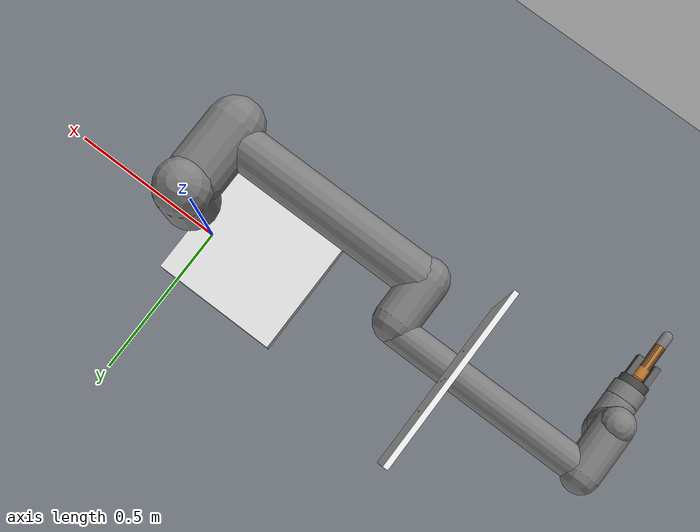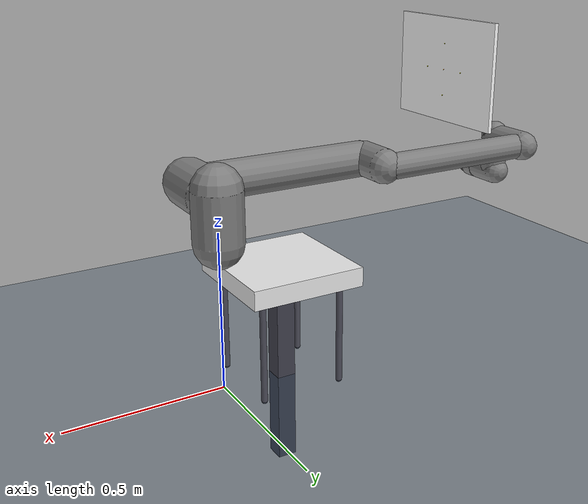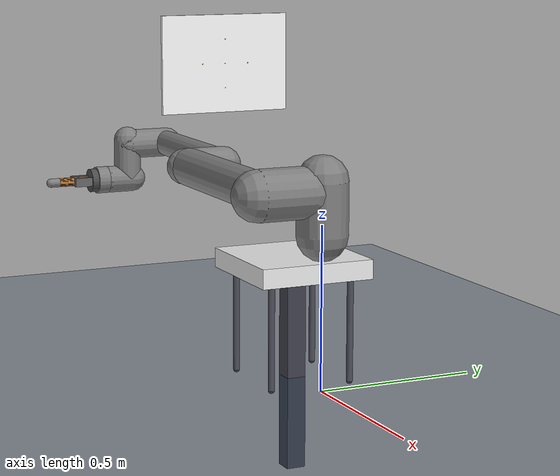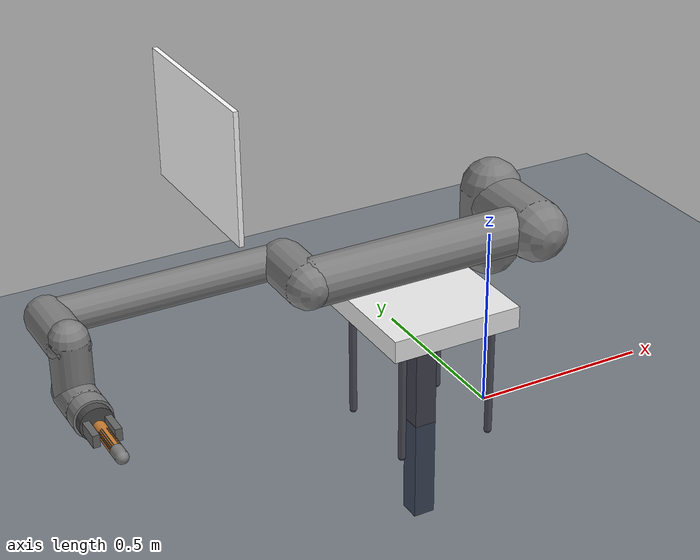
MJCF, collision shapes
<mujoco model="ur10e_multihole_fixed">
  <include file="universal_robots/ur10e.xml"/>

  <visual>
    <headlight diffuse="0.6 0.6 0.6" ambient="0.3 0.3 0.3" specular="0 0 0"/>
    <rgba haze="0.15 0.25 0.35 1"/>
    <global azimuth="120" elevation="-20"/>
  </visual>

  <asset>
    <texture type="skybox" builtin="gradient" rgb1="0.3 0.5 0.7" rgb2="0 0 0" width="512" height="3072"/>
    <texture type="2d" name="groundplane" builtin="checker" rgb1="0.2 0.3 0.4" rgb2="0.1 0.2 0.3"
             width="300" height="300" mark="edge" markrgb="0.8 0.8 0.8"/>
    <material name="groundplane" texture="groundplane" texuniform="true" texrepeat="5 5" reflectance="0.2"/>
  </asset>

  <worldbody>
    <light pos="0 0 1.5" dir="0 0 -1" directional="true"/>
    <geom name="floor" size="0 0 0.05" type="plane" material="groundplane"/>

    <body name="support_table" pos="-0.2 0 0">
      <geom type="box" size="0.18 0.18 0.03" pos="0 0 0.35" rgba="0.92 0.92 0.92 1"/>
      <geom type="box" size="0.03 0.03 0.32" pos="0 0 0.03" rgba="0.25 0.25 0.3 1"/>
      <geom type="capsule" fromto="-0.13 -0.13 0  -0.13 -0.13 0.32" size="0.01" rgba="0.3 0.3 0.35 1"/>
      <geom type="capsule" fromto="-0.13 0.13 0  -0.13 0.13 0.32" size="0.01" rgba="0.3 0.3 0.35 1"/>
      <geom type="capsule" fromto="0.13 -0.13 0  0.13 -0.13 0.32" size="0.01" rgba="0.3 0.3 0.35 1"/>
      <geom type="capsule" fromto="0.13 0.13 0  0.13 0.13 0.32" size="0.01" rgba="0.3 0.3 0.35 1"/>
    </body>

    <body name="panel" pos="-0.78 0.024 0.908">
      <geom name="panel_surface" type="box" size="0.006 0.22 0.16" pos="0 0 0" rgba="1 1 1 1" contype="1" conaffinity="1"/>

      <site name="hole_1_center" pos="0.0  0.00  0.00" size="0.006 0.006 0.0008" type="ellipsoid" rgba="1 1 1 1" zaxis="1 0 0"/>
      <site name="hole_2_center" pos="0.0  0.08  0.00" size="0.006 0.006 0.0008" type="ellipsoid" rgba="1 1 1 1" zaxis="1 0 0"/>
      <site name="hole_3_center" pos="0.0 -0.08  0.00" size="0.006 0.006 0.0008" type="ellipsoid" rgba="1 1 1 1" zaxis="1 0 0"/>
      <site name="hole_4_center" pos="0.0  0.00  0.08" size="0.006 0.006 0.0008" type="ellipsoid" rgba="1 1 1 1" zaxis="1 0 0"/>
      <site name="hole_5_center" pos="0.0  0.00 -0.08" size="0.006 0.006 0.0008" type="ellipsoid" rgba="1 1 1 1" zaxis="1 0 0"/>

      <site name="hole_1_axis" pos="0.008 0 0" size="0.0015" rgba="1 1 0 1"/>
      <site name="hole_2_axis" pos="0.008 0.08 0" size="0.0015" rgba="1 1 0 1"/>
      <site name="hole_3_axis" pos="0.008 -0.08 0" size="0.0015" rgba="1 1 0 1"/>
      <site name="hole_4_axis" pos="0.008 0 0.08" size="0.0015" rgba="1 1 0 1"/>
      <site name="hole_5_axis" pos="0.008 0 -0.08" size="0.0015" rgba="1 1 0 1"/>

      <body name="hole_1_frame" pos="0.003 0.00 0.00">
        <geom type="capsule" fromto="0 0 0  0.005 0 0" size="0.0006" rgba="1 0 0 1" contype="0" conaffinity="0"/>
        <geom type="capsule" fromto="0 0 0  0 0.005 0" size="0.0006" rgba="0 1 0 1" contype="0" conaffinity="0"/>
        <geom type="capsule" fromto="0 0 0  0 0 0.005" size="0.0006" rgba="0 0 1 1" contype="0" conaffinity="0"/>
      </body>
      <body name="hole_2_frame" pos="0.003 0.08 0.00">
        <geom type="capsule" fromto="0 0 0  0.005 0 0" size="0.0006" rgba="1 0 0 1" contype="0" conaffinity="0"/>
        <geom type="capsule" fromto="0 0 0  0 0.005 0" size="0.0006" rgba="0 1 0 1" contype="0" conaffinity="0"/>
        <geom type="capsule" fromto="0 0 0  0 0 0.005" size="0.0006" rgba="0 0 1 1" contype="0" conaffinity="0"/>
      </body>
      <body name="hole_3_frame" pos="0.003 -0.08 0.00">
        <geom type="capsule" fromto="0 0 0  0.005 0 0" size="0.0006" rgba="1 0 0 1" contype="0" conaffinity="0"/>
        <geom type="capsule" fromto="0 0 0  0 0.005 0" size="0.0006" rgba="0 1 0 1" contype="0" conaffinity="0"/>
        <geom type="capsule" fromto="0 0 0  0 0 0.005" size="0.0006" rgba="0 0 1 1" contype="0" conaffinity="0"/>
      </body>
      <body name="hole_4_frame" pos="0.003 0.00 0.08">
        <geom type="capsule" fromto="0 0 0  0.005 0 0" size="0.0006" rgba="1 0 0 1" contype="0" conaffinity="0"/>
        <geom type="capsule" fromto="0 0 0  0 0.005 0" size="0.0006" rgba="0 1 0 1" contype="0" conaffinity="0"/>
        <geom type="capsule" fromto="0 0 0  0 0 0.005" size="0.0006" rgba="0 0 1 1" contype="0" conaffinity="0"/>
      </body>
      <body name="hole_5_frame" pos="0.003 0.00 -0.08">
        <geom type="capsule" fromto="0 0 0  0.005 0 0" size="0.0006" rgba="1 0 0 1" contype="0" conaffinity="0"/>
        <geom type="capsule" fromto="0 0 0  0 0.005 0" size="0.0006" rgba="0 1 0 1" contype="0" conaffinity="0"/>
        <geom type="capsule" fromto="0 0 0  0 0 0.005" size="0.0006" rgba="0 0 1 1" contype="0" conaffinity="0"/>
      </body>
    </body>
  </worldbody>
</mujoco>

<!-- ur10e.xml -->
<mujoco model="ur10e">
  <compiler angle="radian" meshdir="universal_robots/assets" autolimits="true"/>
  <option integrator="implicitfast"/>

  <default>
    <default class="ur10e">
      <material specular="0.5" shininess="0.25"/>
      <joint axis="0 1 0" range="-6.28319 6.28319" armature="0.1"/>
      <position ctrlrange="-6.2831 6.2831"/>
      <general biastype="affine" ctrlrange="-6.2831 6.2831" gainprm="5000" biasprm="0 -5000 -500"/>
      <default class="size4">
        <joint damping="10"/>
        <general forcerange="-330 330"/>
      </default>
      <default class="size3">
        <joint damping="5"/>
        <general forcerange="-150 150"/>
        <default class="size3_limited">
          <joint range="-3.1415 3.1415"/>
          <general ctrlrange="-3.1415 3.1415"/>
        </default>
      </default>
      <default class="size2">
        <joint damping="2"/>
        <general forcerange="-56 56"/>
      </default>
      <default class="visual">
        <geom type="mesh" contype="0" conaffinity="0" group="2"/>
      </default>
      <default class="collision">
        <geom type="capsule" group="3"/>
        <default class="eef_collision">
          <geom type="cylinder"/>
        </default>
      </default>
      <site size="0.001" rgba="0.5 0.5 0.5 0.3" group="4"/>
    </default>
  </default>

  <asset>
    <material class="ur10e" name="black" rgba="0.033 0.033 0.033 1"/>
    <material class="ur10e" name="jointgray" rgba="0.278 0.278 0.278 1"/>
    <material class="ur10e" name="linkgray" rgba="0.82 0.82 0.82 1"/>
    <material class="ur10e" name="urblue" rgba="0.49 0.678 0.8 1"/>

    <mesh file="base_0.obj"/>
    <mesh file="base_1.obj"/>
    <mesh file="shoulder_0.obj"/>
    <mesh file="shoulder_1.obj"/>
    <mesh file="shoulder_2.obj"/>
    <mesh file="upperarm_0.obj"/>
    <mesh file="upperarm_1.obj"/>
    <mesh file="upperarm_2.obj"/>
    <mesh file="upperarm_3.obj"/>
    <mesh file="forearm_0.obj"/>
    <mesh file="forearm_1.obj"/>
    <mesh file="forearm_2.obj"/>
    <mesh file="forearm_3.obj"/>
    <mesh file="wrist1_0.obj"/>
    <mesh file="wrist1_1.obj"/>
    <mesh file="wrist1_2.obj"/>
    <mesh file="wrist2_0.obj"/>
    <mesh file="wrist2_1.obj"/>
    <mesh file="wrist2_2.obj"/>
    <mesh file="wrist3.obj"/>
  </asset>

  <worldbody>
    <light name="spotlight" mode="targetbodycom" target="wrist_2_link" pos="0 -1 2"/>
    <body name="base" pos="0 0 0.42" quat="0 0 0 -1" childclass="ur10e">
      <inertial mass="4.0" pos="0 0 0" diaginertia="0.0061063308908 0.0061063308908 0.01125"/>
      <geom mesh="base_0" material="black" class="visual"/>
      <geom mesh="base_1" material="jointgray" class="visual"/>
      <body name="shoulder_link" pos="0 0 0.181">
        <inertial pos="0 0 0" mass="7.778" diaginertia="0.0314743 0.0314743 0.0218756"/>
        <joint name="shoulder_pan_joint" class="size4" axis="0 0 1"/>
        <geom mesh="shoulder_0" material="urblue" class="visual"/>
        <geom mesh="shoulder_1" material="black" class="visual"/>
        <geom mesh="shoulder_2" material="jointgray" class="visual"/>
        <geom class="collision" size="0.078 0.08" pos="0 0 -0.05"/>
        <body name="upper_arm_link" pos="0 0.176 0" quat="1 0 1 0">
          <inertial pos="0 0 0.3065" mass="12.93" diaginertia="0.423074 0.423074 0.0363656"/>
          <joint name="shoulder_lift_joint" class="size4"/>
          <geom mesh="upperarm_0" material="black" class="visual"/>
          <geom mesh="upperarm_1" material="jointgray" class="visual"/>
          <geom mesh="upperarm_2" material="urblue" class="visual"/>
          <geom mesh="upperarm_3" material="linkgray" class="visual"/>
          <geom class="collision" pos="0 -0.05 0" quat="1 1 0 0" size="0.078 0.08"/>
          <geom class="collision" size="0.06 0.3" pos="0 0 0.3"/>
          <body name="forearm_link" pos="0 -0.137 0.613">
            <inertial pos="0 0 0.2855" mass="3.87" diaginertia="0.11059 0.11059 0.0108844"/>
            <joint name="elbow_joint" class="size3_limited"/>
            <geom mesh="forearm_0" material="urblue" class="visual"/>
            <geom mesh="forearm_1" material="black" class="visual"/>
            <geom mesh="forearm_2" material="jointgray" class="visual"/>
            <geom mesh="forearm_3" material="linkgray" class="visual"/>
            <geom class="collision" pos="0 0.08 0" quat="1 1 0 0" size="0.058 0.065"/>
            <geom class="collision" size="0.043 0.28" pos="0 0 0.29"/>
            <body name="wrist_1_link" pos="0 0 0.571" quat="1 0 1 0">
              <inertial pos="0 0.135 0" quat="0.5 0.5 -0.5 0.5" mass="1.96"
                diaginertia="0.0055125 0.00510825 0.00510825"/>
              <joint name="wrist_1_joint" class="size2"/>
              <geom mesh="wrist1_0" material="black" class="visual"/>
              <geom mesh="wrist1_1" material="urblue" class="visual"/>
              <geom mesh="wrist1_2" material="jointgray" class="visual"/>
              <geom class="collision" pos="0 0.06 0" quat="1 1 0 0" size="0.05 0.07"/>
              <body name="wrist_2_link" pos="0 0.135 0">
                <inertial pos="0 0 0.12" quat="0.5 0.5 -0.5 0.5" mass="1.96"
                  diaginertia="0.0055125 0.00510825 0.00510825"/>
                <joint name="wrist_2_joint" axis="0 0 1" class="size2"/>
                <geom mesh="wrist2_0" material="black" class="visual"/>
                <geom mesh="wrist2_1" material="urblue" class="visual"/>
                <geom mesh="wrist2_2" material="jointgray" class="visual"/>
                <geom class="collision" size="0.046 0.065" pos="0 0 0.05"/>
                <geom class="collision" pos="0 0.028 0.12" quat="1 1 0 0" size="0.046 0.043"/>
                <body name="wrist_3_link" pos="0 0 0.12">
                  <inertial pos="0 0.092 0" quat="0 1 -1 0" mass="0.202"
                    diaginertia="0.000204525 0.000144346 0.000144346"/>
                  <joint name="wrist_3_joint" class="size2"/>
                  <geom material="linkgray" mesh="wrist3" class="visual"/>
                  <geom class="eef_collision" pos="0 0.097 0" quat="1 1 0 0" size="0.046 0.02"/>
                  <site name="attachment_site" pos="0 0.1 0" quat="-1 1 0 0"/>
                  <body name="gripper_base" pos="0 0.1 0" quat="-1 1 0 0">
                  <geom type="cylinder" size="0.04 0.02" pos="0 0 0.02" rgba="0.3 0.3 0.3 1" mass="0.5"/>

                  <body name="left_finger" pos="-0.025 0 0.07">
                      <geom type="box" size="0.008 0.015 0.03" rgba="0.4 0.4 0.4 1" mass="0.1"/>
                  </body>
                  <body name="right_finger" pos="0.025 0 0.07">
                      <geom type="box" size="0.008 0.015 0.03" rgba="0.4 0.4 0.4 1" mass="0.1"/>
                  </body>

                  <body name="peg" pos="0 0 0.1">
                      <geom name="peg_geom" type="cylinder" size="0.015 0.05" rgba="0.8 0.5 0.2 1" mass="0.1" friction="1 0.005 0.0001"/>
                      <geom class="collision" size="0.015 0.05" pos="0 0 0.03"/>
                      <site name="peg_tip" pos="0 0 0.05" size="0.01" rgba="1 0 0 1"/>

                      <site name="wrist_ft_sensor" pos="0 0 -0.05" size="0.01" rgba="0 1 0 0"/>
                  </body>
              </body>
                </body>
              </body>
            </body>
          </body>
        </body>
      </body>
    </body>
  </worldbody>

  <sensor>
    <force site="wrist_ft_sensor" name="wrist_force"/>
    <torque site="wrist_ft_sensor" name="wrist_torque"/>
  </sensor>

  <actuator>
    <general class="size4" name="shoulder_pan" joint="shoulder_pan_joint"/>
    <general class="size4" name="shoulder_lift" joint="shoulder_lift_joint"/>
    <general class="size3_limited" name="elbow" joint="elbow_joint"/>
    <general class="size2" name="wrist_1" joint="wrist_1_joint"/>
    <general class="size2" name="wrist_2" joint="wrist_2_joint"/>
    <general class="size2" name="wrist_3" joint="wrist_3_joint"/>
  </actuator>

  <keyframe>
    <key name="home" qpos="0 -1.5708 1.5708 -3.14 -1.5708 0" ctrl="0 -1.5708 1.5708 -3.14 -1.5708 0"/>
    <key name="hole" qpos="-0.307 -1.23 1.98 -3.88 -1.27 0" ctrl="-0.307 -1.23 1.98 -3.88 -1.27 0"/>
  </keyframe>
</mujoco>
